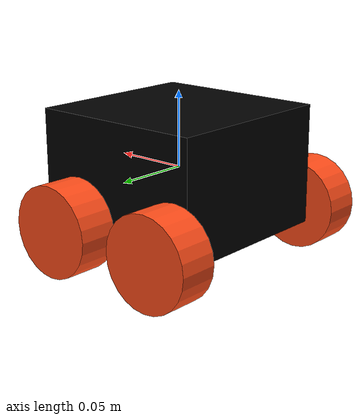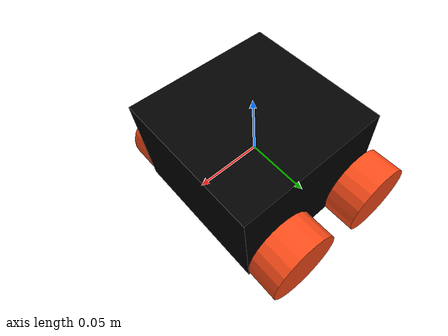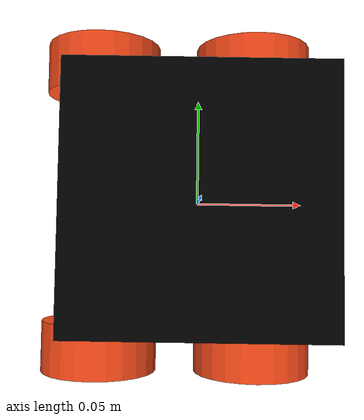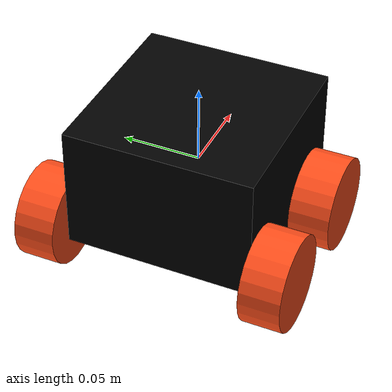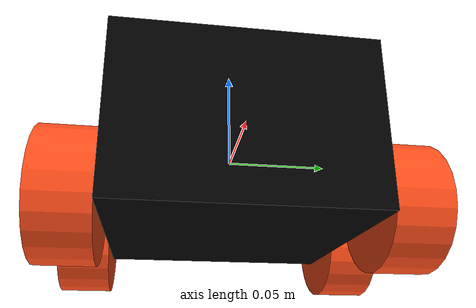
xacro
<?xml version="1.0"?>
<robot xmlns:xacro="http://www.ros.org/wiki/xacro" >
    <xacro:include filename="inertial_macros.xacro"/>
    <material name="white">
        <color rgba="1 1 1 1" />
    </material>

    <material name="orange">
        <color rgba="1 0.3 0.1 1" />
    </material>

    <material name="blue">
        <color rgba="0.2 0.2 1 1" />
    </material>

    <material name="black">
        <color rgba="0 0 0 1" />
    </material>

    <!-- BASE LINK -->

    <link name="base_link">

    </link>

    <!-- CHASSIS LINK -->
    <joint name="chassis_joint" type="fixed">
        <parent link="base_link"/>
        <child link="chassis"/>
        <origin xyz ="0 0 0"/>
    </joint>

    <link name="chassis">
        <visual>
            <origin xyz="0 0 0"/>
            <geometry>
                <box size="0.12 0.12 0.08"/>
            </geometry>
            <material name="black"/>
        </visual>
         <collision>
            <origin xyz=" 0 0 0"/>
            <geometry>
                <box size="0.12 0.12 0.08"/>
            </geometry>
        </collision>
        <xacro:inertial_box mass="0.5" x="0.12" y="0.12" z="0.08">
            <origin xyz="0 0 0" rpy="0 0 0"/>
        </xacro:inertial_box>
    </link>

    <gazebo reference="chassis">
        <material>Gazebo/White</material>
    </gazebo>

    <!-- LEFT FRONT WHEEL LINK -->

    <joint name="left_wheel_front_joint" type="continuous">
        <parent link="base_link"/>
        <child link="left_front_wheel"/>
        <origin xyz="0.03 -0.073 -0.03" rpy="-${pi/2} 0 0" />
        <axis xyz="0 0 1"/>
    </joint>

    <link name="left_front_wheel">
        <visual>
            <geometry>
                <cylinder radius="0.03" length="0.026"/>
            </geometry>
            <material name="orange"/>
        </visual>
        <collision>
            <geometry>
                <cylinder radius="0.03" length="0.026"/>
            </geometry>
        </collision>
        <xacro:inertial_cylinder mass="0.1" length="0.026" radius="0.03">
            <origin xyz="0 0 0" rpy="0 0 0"/>
        </xacro:inertial_cylinder>
    </link>

    <gazebo reference="left_front_wheel">
        <material>Gazebo/Orange</material>
    </gazebo>

    <!-- LEFT REAR WHEEL LINK -->

    <joint name="left_wheel_rear_joint" type="continuous">
        <parent link="base_link"/>
        <child link="left_rear_wheel"/>
        <origin xyz="-0.05 -0.073 -0.03" rpy="-${pi/2} 0 0" />
        <axis xyz="0 0 1"/>
    </joint>

    <link name="left_rear_wheel">
        <visual>
            <geometry>
                <cylinder radius="0.03" length="0.026"/>
            </geometry>
            <material name="orange"/>
        </visual>
        <collision>
            <geometry>
                <cylinder radius="0.03" length="0.26"/>
            </geometry>
        </collision>
        <xacro:inertial_cylinder mass="0.1" length="0.026" radius="0.03">
            <origin xyz="0 0 0" rpy="0 0 0"/>
        </xacro:inertial_cylinder>
    </link>

    <gazebo reference="left_rear_wheel">
        <material>Gazebo/Orange</material>
    </gazebo>

        <!-- RIGHT FRONT WHEEL LINK -->

    <joint name="right_wheel_front_joint" type="continuous">
        <parent link="base_link"/>
        <child link="right_front_wheel"/>
        <origin xyz="0.03 0.073 -0.03" rpy="${pi/2} 0 0" />
        <axis xyz="0 0 -1"/>
    </joint>

    <link name="right_front_wheel">
        <visual>
            <geometry>
                <cylinder radius="0.03" length="0.026"/>
            </geometry>
            <material name="orange"/>
        </visual>
        <collision>
            <geometry>
                <cylinder radius="0.03" length="0.026"/>
            </geometry>
        </collision>
        <xacro:inertial_cylinder mass="0.1" length="0.026" radius="0.03">
            <origin xyz="0 0 0" rpy="0 0 0"/>
        </xacro:inertial_cylinder>
    </link>

    <gazebo reference="right_front_wheel">
        <material>Gazebo/Orange</material>
    </gazebo>

        <!-- RIGHT REAR WHEEL LINK -->

    <joint name="right_wheel_rear_joint" type="continuous">
        <parent link="base_link"/>
        <child link="right_rear_wheel"/>
        <origin xyz="-0.05 0.073 -0.03" rpy="${pi/2} 0 0" />
        <axis xyz="0 0 -1"/>
        <joint_properties damping="1.0" friction="1.0"/>
    </joint>

    <link name="right_rear_wheel">
        <visual>
            <geometry>
                <cylinder radius="0.03" length="0.026"/>
            </geometry>
            <material name="orange"/>
        </visual>
        <collision>
            <geometry>
                <cylinder radius="0.03" length="0.026"/>
            </geometry>
        </collision>
        <xacro:inertial_cylinder mass="0.1" length="0.026" radius="0.03">
            <origin xyz="0 0 0" rpy="0 0 0"/>
        </xacro:inertial_cylinder>
    </link>

    <gazebo reference="right_rear_wheel">
        <material>Gazebo/Orange</material>
    </gazebo>

</robot>
